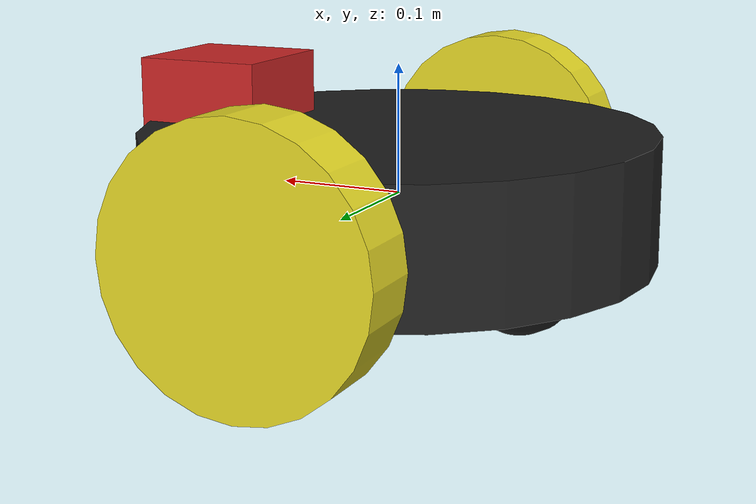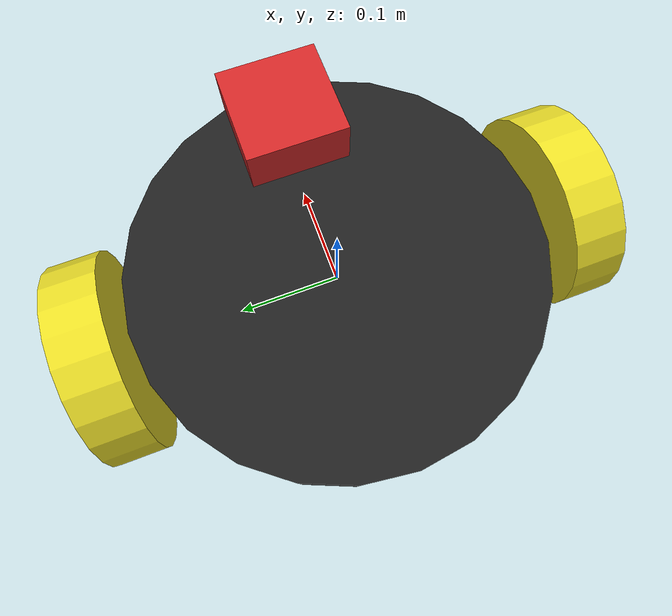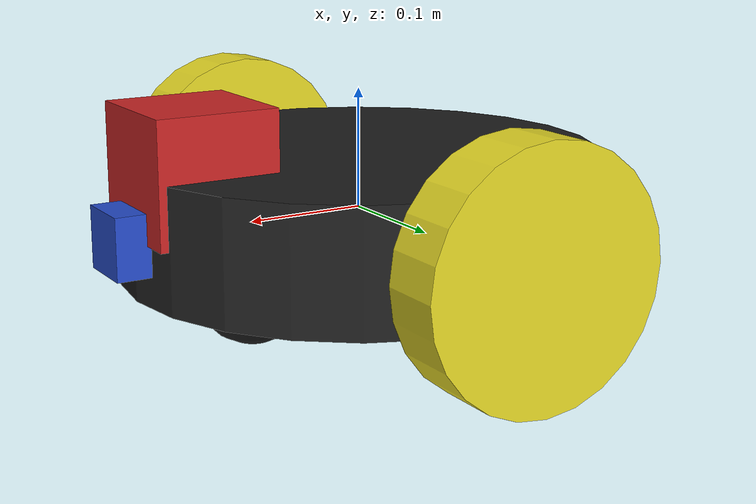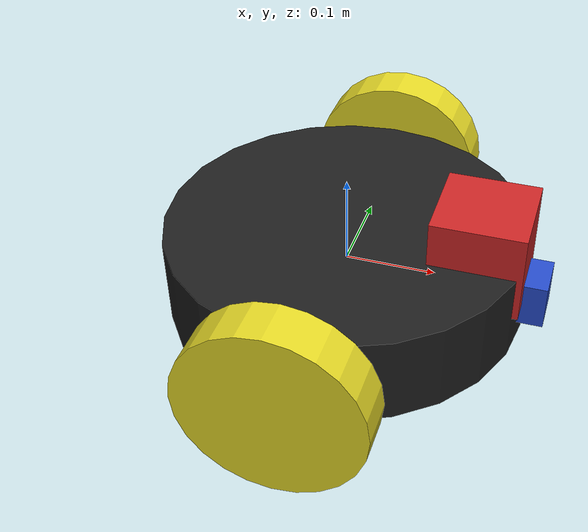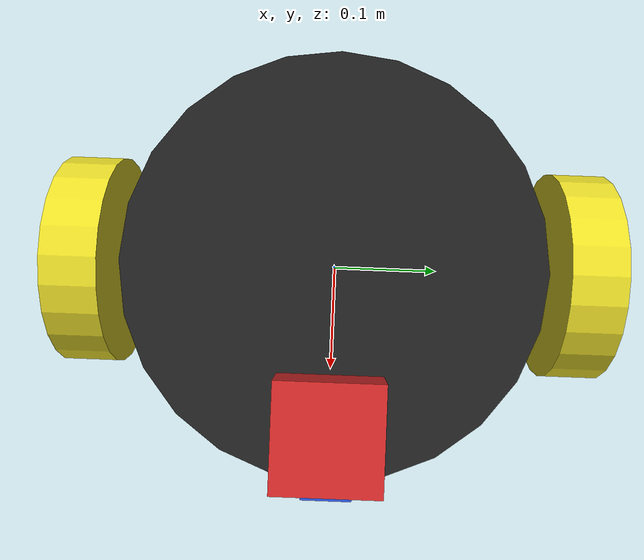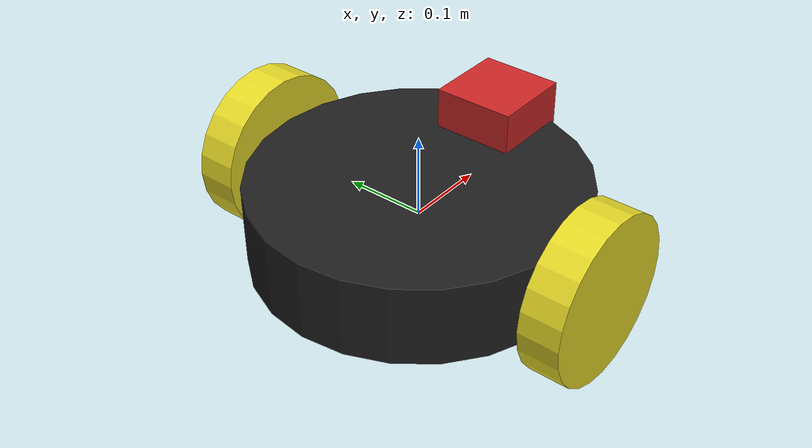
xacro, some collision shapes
<?xml version='1.0'?>

<robot name="my_robot" xmlns:xacro="http://www.ros.org/wiki/xacro">

  <link name="robot_footprint"></link>

  <joint name="robot_footprint_joint" type="fixed">
    <origin xyz="0 0 0" rpy="0 0 0" />
    <parent link="robot_footprint"/>
    <child link="chassis" />
  </joint>

  <link name='chassis'>
    <pose>0 0 0.05 0 0 0</pose>

    <inertial>
      <mass value="7.0"/>
      <origin xyz="0.0 0 0" rpy=" 0 0 0"/>
      <inertia
          ixx="0.05" ixy="0" ixz="0"
          iyy="0.05" iyz="0"
          izz="0.05"
      />
    </inertial>

    <collision name='collision'>
      <origin xyz="0 0 0" rpy=" 0 0 0"/>
      <geometry>
        <cylinder radius="0.2" length="0.1"/>
      </geometry>
    </collision>

    <visual name='chassis_visual'>
      <origin xyz="0 0 0" rpy=" 0 0 0"/>
      <geometry>
         <cylinder radius="0.2" length="0.1"/>
      </geometry>
    </visual>

    <collision name='front_caster_collision'>
      <origin xyz="0.1 0 -0.05" rpy=" 0 0 0"/>
      <geometry>
        <sphere radius="0.049"/>
      </geometry>
    </collision>

    <visual name='front_caster_visual'>
      <origin xyz="0.1 0 -0.05" rpy=" 0 0 0"/>
      <geometry>
        <sphere radius="0.05"/>
      </geometry>
    </visual>

    <collision name='back_caster_collision'>
      <origin xyz="-0.1 0 -0.05" rpy=" 0 0 0"/>
      <geometry>
        <sphere radius="0.049"/>
      </geometry>
    </collision>

    <visual name='back_caster_visual'>
      <origin xyz="-0.1 0 -0.05" rpy=" 0 0 0"/>
      <geometry>
        <sphere radius="0.05"/>
      </geometry>
    </visual>

</link>

<link name='right_wheel'>

    <inertial>
      <mass value="2.5"/>
      <origin xyz="0.0 0 0" rpy=" 0 1.5707 1.5707"/>
      <inertia
          ixx="0.05" ixy="0" ixz="0"
          iyy="0.05" iyz="0"
          izz="0.05"
      />
    </inertial>

 <collision name='right_wheel_collision'>
      <origin xyz="0 0 0" rpy=" 0 1.5707 1.5707"/>
      <geometry>
        <cylinder radius="0.1" length="0.05"/>
      </geometry>
    </collision>

    <visual name='right_wheel_visual'>
      <origin xyz="0 0 0" rpy=" 0 1.5707 1.5707"/>
      <geometry>
        <cylinder radius="0.1" length="0.05"/>
      </geometry>
    </visual>
  </link>

<link name='left_wheel'>

    <inertial>
      <mass value="2.5"/>
      <origin xyz="0.0 0 0" rpy=" 0 1.5707 1.5707"/>
      <inertia
          ixx="0.05" ixy="0" ixz="0"
          iyy="0.05" iyz="0"
          izz="0.05"
      />
    </inertial>

 <collision name='left_wheel_collision'>
      <origin xyz="0 0 0" rpy=" 0 1.5707 1.5707"/>
      <geometry>
        <cylinder radius="0.1" length="0.05"/>
      </geometry>
    </collision>

    <visual name='left_wheel_visual'>
      <origin xyz="0 0 0" rpy=" 0 1.5707 1.5707"/>
      <geometry>
        <cylinder radius="0.1" length="0.05"/>
      </geometry>
    </visual>
  </link>

   <joint type="continuous" name="left_wheel_hinge">
    <origin xyz="0 0.23 0" rpy="0 0 0"/>
    <child link="left_wheel"/>
    <parent link="chassis"/>
    <axis xyz="0 1 0" rpy="0 0 0"/>
    <limit effort="10000" velocity="1000"/>
    <dynamics damping="1.0" friction="1.0"/>
  </joint>

   <joint type="continuous" name="right_wheel_hinge">
    <origin xyz="0 -0.23 0" rpy="0 0 0"/>
    <child link="right_wheel"/>
    <parent link="chassis"/>
    <axis xyz="0 1 0" rpy="0 0 0"/>
    <limit effort="10000" velocity="1000"/>
    <dynamics damping="1.0" friction="1.0"/>
  </joint>

  <link name='camera'>
    <inertial>
      <mass value="0.1"/>
      <origin xyz="0.05 0.05 0.05" rpy=" 0 0 0"/>
      <inertia
          ixx="1e-6" ixy="0" ixz="0"
          iyy="1e-6" iyz="0"
          izz="1e-6"
      />
    </inertial>

 <collision name='camera_collision'>
      <origin xyz="0 0 0" rpy=" 0 0 0"/>
      <geometry>
         <box size="0.05 0.05 0.05" />
      </geometry>
    </collision>

    <visual name='camera_visual'>
      <origin xyz="0 0 0" rpy=" 0 0 0"/>
      <geometry>
         <box size="0.05 0.05 0.05" />
      </geometry>
    </visual>
  </link>

   <joint type="fixed" name="camera_joint">
    <origin xyz="0.2 0 0" rpy="0 0 0"/>
    <child link="camera"/>
    <parent link="chassis"/>
    <axis xyz="0 1 0" rpy="0 0 0"/>
  </joint>

  <link name='hokuyo'>
    <inertial>
      <mass value="1e-5"/>
      <origin xyz="0 0 0" rpy=" 0 0 0"/>
      <inertia
          ixx="1e-6" ixy="0" ixz="0"
          iyy="1e-6" iyz="0"
          izz="1e-6"
      />
    </inertial>

 <collision name='hokuyo_collision'>
      <origin xyz="0 0 0" rpy=" 0 0 0"/>
      <geometry>
         <box size="0.1 0.1 0.1" />
      </geometry>
    </collision>

    <visual name='hokuyo_visual'>
      <origin xyz="0 0 0" rpy=" 0 0 0"/>
      <geometry>
         <mesh filename = "package://my_robot/meshes/hokuyo.dae"/>
      </geometry>
    </visual>
  </link>

   <joint type="fixed" name="hokuyo_joint">
    <origin xyz="0.15 0 0.05" rpy="0 0 0"/>
    <child link="hokuyo"/>
    <parent link="chassis"/>
    <axis xyz="0 1 0" rpy="0 0 0"/>
  </joint>

    <joint name="camera_optical_joint" type="fixed">
    <origin xyz="0 0 0" rpy="-1.5707 0 -1.5707"/>
    <parent link="camera"/>
    <child link="camera_link_optical"/>
  </joint>

  <link name="camera_link_optical">
  </link>

  <gazebo reference="left_wheel">
    <material>Gazebo/Yellow</material>
</gazebo>

  <gazebo reference="right_wheel">
    <material>Gazebo/Yellow</material>
</gazebo>

    <gazebo reference="chassis">
    <material>Gazebo/Black</material>
</gazebo>

     <gazebo reference="hokuyo">
    <material>Gazebo/Red</material>
</gazebo>

  <gazebo reference="camera">
    <material>Gazebo/Blue</material>
</gazebo>

<xacro:include filename="$(find my_robot)/urdf/my_robot.gazebo" />
</robot>
